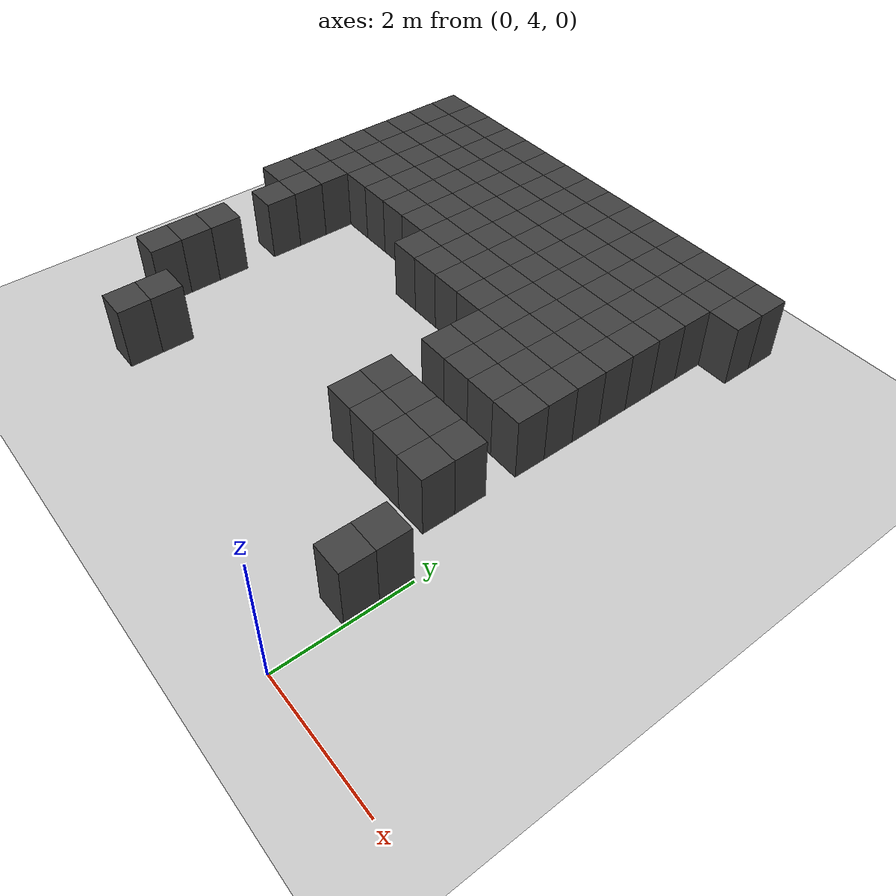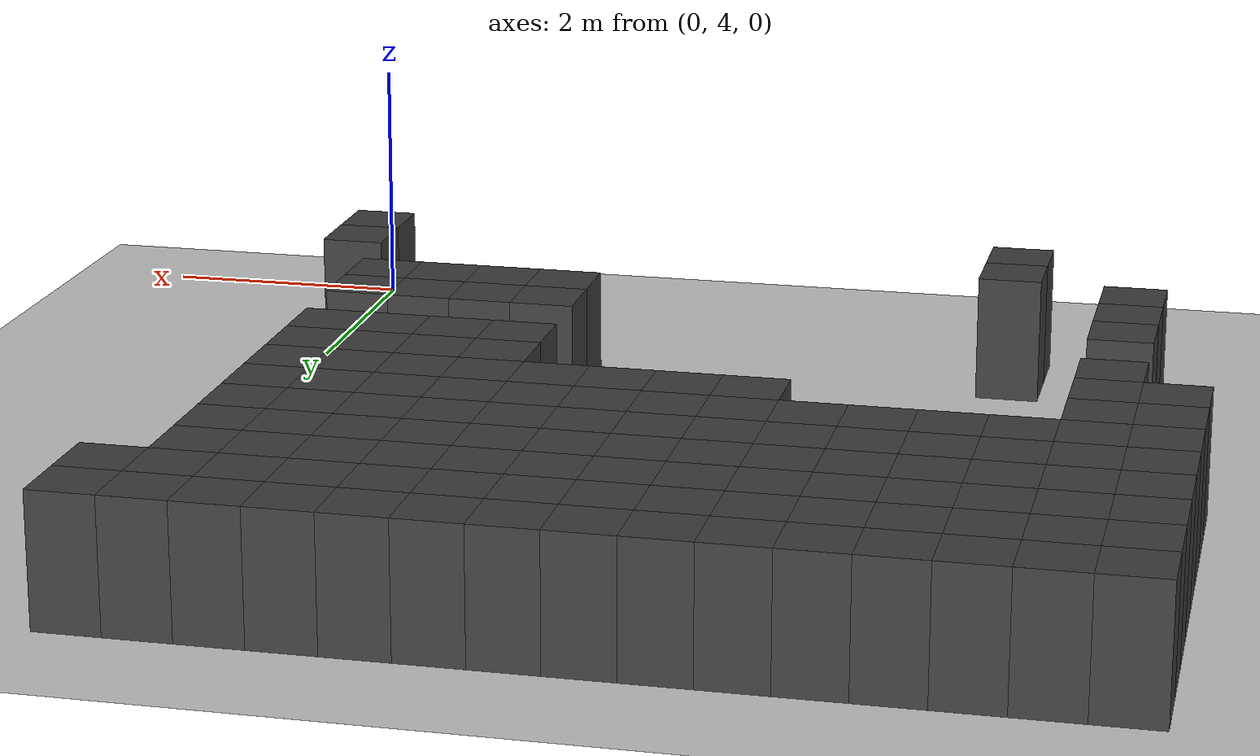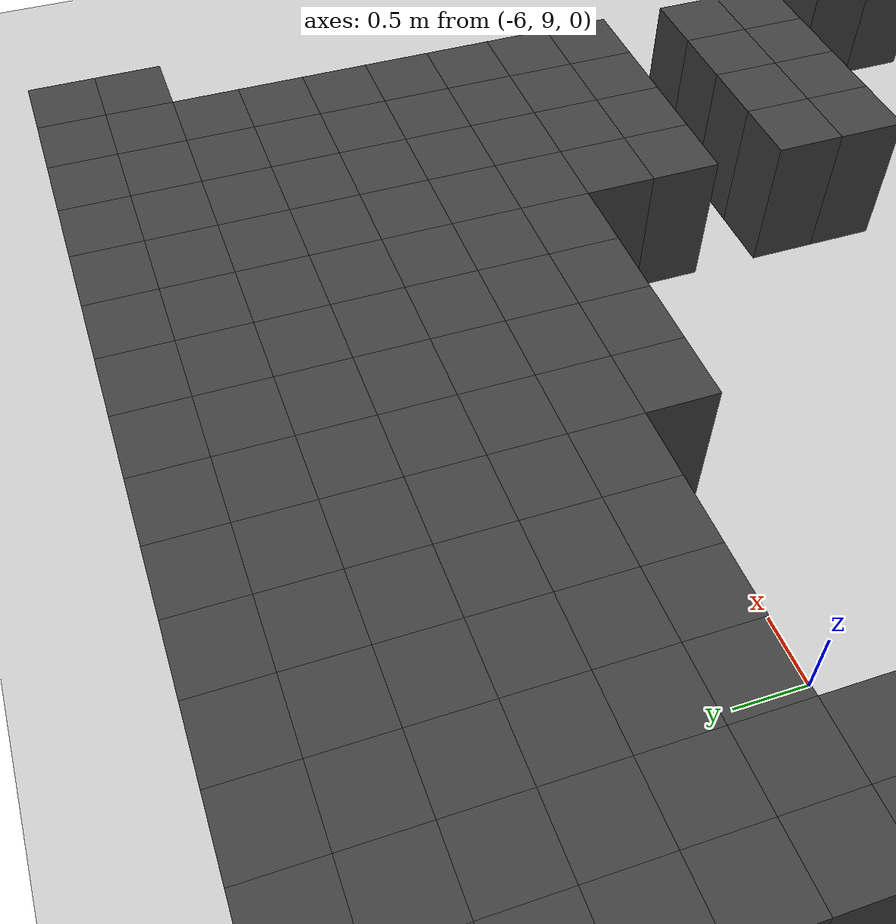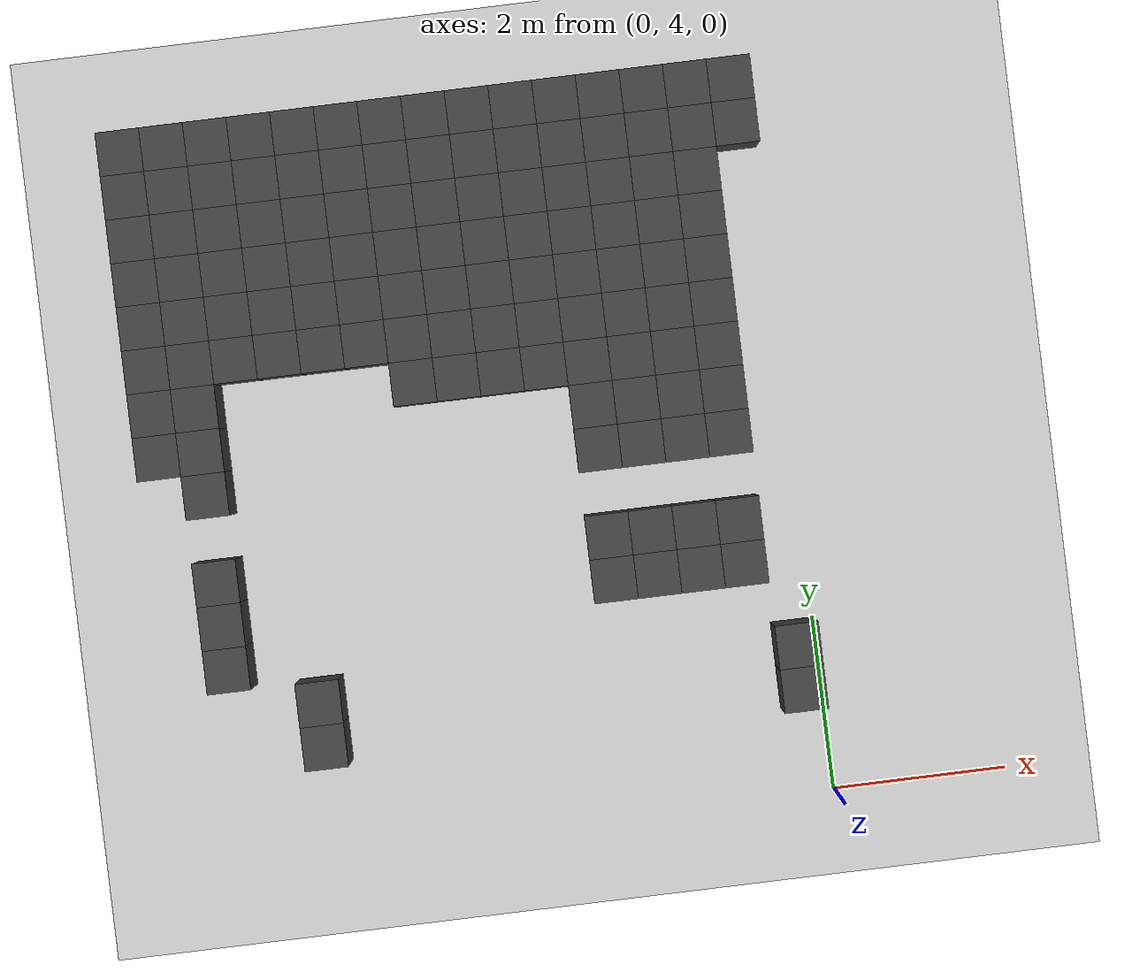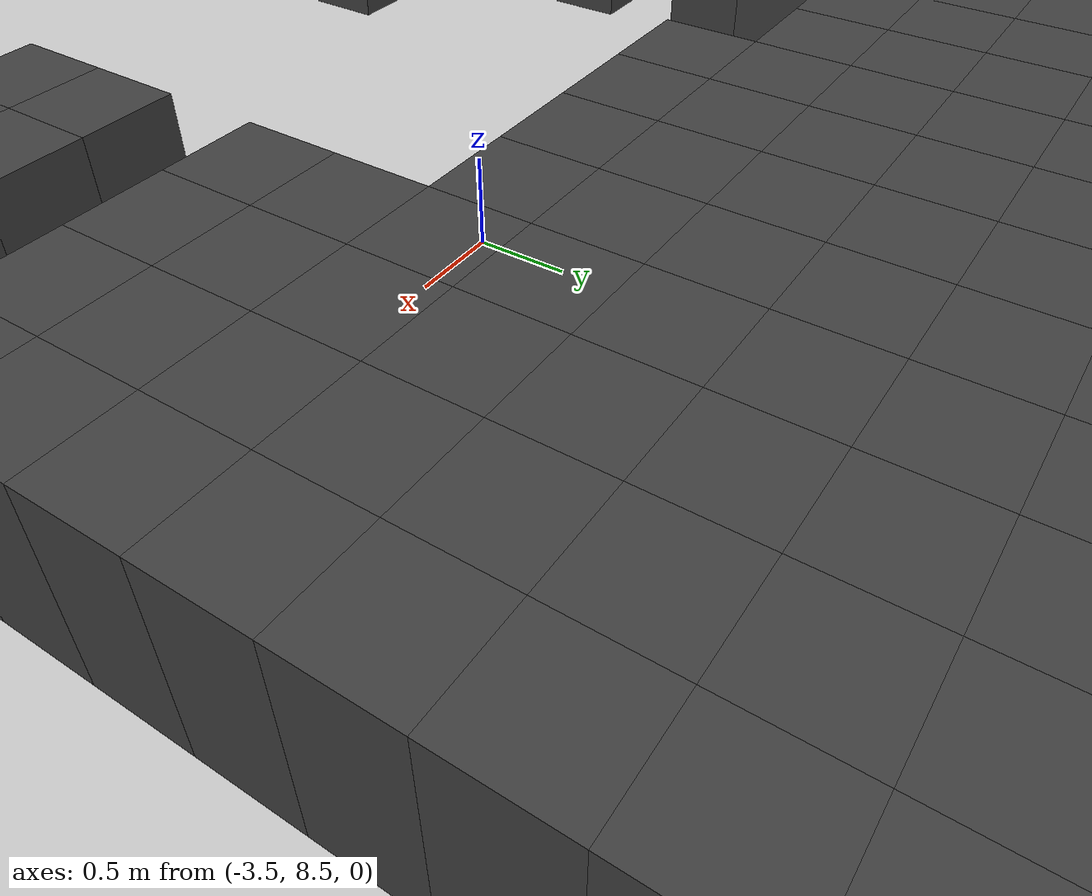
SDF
<sdf version="1.7">
 <world name="map_14888">
  <model name="ground_plane">
   <static>true</static>
   <link name="link">
    <collision name="collision">
     <geometry><plane><normal>0 0 1</normal><size>200 200</size></plane></geometry>
    </collision>
    <visual name="visual">
     <geometry><plane><normal>0 0 1</normal><size>200 200</size></plane></geometry>
     <material><ambient>0.8 0.8 0.8 1</ambient><diffuse>0.8 0.8 0.8 1</diffuse></material>
    </visual>
   </link>
  </model>
  <model name="maze_environment">
   <static>true</static>
   <link name="wall_10">
    <pose>-7.250 12.250 0.500 0 0 0</pose>
    <collision name="col"><geometry><box><size>0.5 0.5 1.0</size></box></geometry></collision>
    <visual name="vis">
     <geometry><box><size>0.5 0.5 1.0</size></box></geometry>
     <material><ambient>0.15 0.15 0.15 1</ambient><diffuse>0.25 0.25 0.25 1</diffuse></material>
    </visual>
   </link>
   <link name="wall_11">
    <pose>-6.750 12.250 0.500 0 0 0</pose>
    <collision name="col"><geometry><box><size>0.5 0.5 1.0</size></box></geometry></collision>
    <visual name="vis">
     <geometry><box><size>0.5 0.5 1.0</size></box></geometry>
     <material><ambient>0.15 0.15 0.15 1</ambient><diffuse>0.25 0.25 0.25 1</diffuse></material>
    </visual>
   </link>
   <link name="wall_12">
    <pose>-6.250 12.250 0.500 0 0 0</pose>
    <collision name="col"><geometry><box><size>0.5 0.5 1.0</size></box></geometry></collision>
    <visual name="vis">
     <geometry><box><size>0.5 0.5 1.0</size></box></geometry>
     <material><ambient>0.15 0.15 0.15 1</ambient><diffuse>0.25 0.25 0.25 1</diffuse></material>
    </visual>
   </link>
   <link name="wall_13">
    <pose>-5.750 12.250 0.500 0 0 0</pose>
    <collision name="col"><geometry><box><size>0.5 0.5 1.0</size></box></geometry></collision>
    <visual name="vis">
     <geometry><box><size>0.5 0.5 1.0</size></box></geometry>
     <material><ambient>0.15 0.15 0.15 1</ambient><diffuse>0.25 0.25 0.25 1</diffuse></material>
    </visual>
   </link>
   <link name="wall_14">
    <pose>-5.250 12.250 0.500 0 0 0</pose>
    <collision name="col"><geometry><box><size>0.5 0.5 1.0</size></box></geometry></collision>
    <visual name="vis">
     <geometry><box><size>0.5 0.5 1.0</size></box></geometry>
     <material><ambient>0.15 0.15 0.15 1</ambient><diffuse>0.25 0.25 0.25 1</diffuse></material>
    </visual>
   </link>
   <link name="wall_15">
    <pose>-4.750 12.250 0.500 0 0 0</pose>
    <collision name="col"><geometry><box><size>0.5 0.5 1.0</size></box></geometry></collision>
    <visual name="vis">
     <geometry><box><size>0.5 0.5 1.0</size></box></geometry>
     <material><ambient>0.15 0.15 0.15 1</ambient><diffuse>0.25 0.25 0.25 1</diffuse></material>
    </visual>
   </link>
   <link name="wall_16">
    <pose>-4.250 12.250 0.500 0 0 0</pose>
    <collision name="col"><geometry><box><size>0.5 0.5 1.0</size></box></geometry></collision>
    <visual name="vis">
     <geometry><box><size>0.5 0.5 1.0</size></box></geometry>
     <material><ambient>0.15 0.15 0.15 1</ambient><diffuse>0.25 0.25 0.25 1</diffuse></material>
    </visual>
   </link>
   <link name="wall_17">
    <pose>-3.750 12.250 0.500 0 0 0</pose>
    <collision name="col"><geometry><box><size>0.5 0.5 1.0</size></box></geometry></collision>
    <visual name="vis">
     <geometry><box><size>0.5 0.5 1.0</size></box></geometry>
     <material><ambient>0.15 0.15 0.15 1</ambient><diffuse>0.25 0.25 0.25 1</diffuse></material>
    </visual>
   </link>
   <link name="wall_18">
    <pose>-3.250 12.250 0.500 0 0 0</pose>
    <collision name="col"><geometry><box><size>0.5 0.5 1.0</size></box></geometry></collision>
    <visual name="vis">
     <geometry><box><size>0.5 0.5 1.0</size></box></geometry>
     <material><ambient>0.15 0.15 0.15 1</ambient><diffuse>0.25 0.25 0.25 1</diffuse></material>
    </visual>
   </link>
   <link name="wall_19">
    <pose>-2.750 12.250 0.500 0 0 0</pose>
    <collision name="col"><geometry><box><size>0.5 0.5 1.0</size></box></geometry></collision>
    <visual name="vis">
     <geometry><box><size>0.5 0.5 1.0</size></box></geometry>
     <material><ambient>0.15 0.15 0.15 1</ambient><diffuse>0.25 0.25 0.25 1</diffuse></material>
    </visual>
   </link>
   <link name="wall_20">
    <pose>-2.250 12.250 0.500 0 0 0</pose>
    <collision name="col"><geometry><box><size>0.5 0.5 1.0</size></box></geometry></collision>
    <visual name="vis">
     <geometry><box><size>0.5 0.5 1.0</size></box></geometry>
     <material><ambient>0.15 0.15 0.15 1</ambient><diffuse>0.25 0.25 0.25 1</diffuse></material>
    </visual>
   </link>
   <link name="wall_21">
    <pose>-1.750 12.250 0.500 0 0 0</pose>
    <collision name="col"><geometry><box><size>0.5 0.5 1.0</size></box></geometry></collision>
    <visual name="vis">
     <geometry><box><size>0.5 0.5 1.0</size></box></geometry>
     <material><ambient>0.15 0.15 0.15 1</ambient><diffuse>0.25 0.25 0.25 1</diffuse></material>
    </visual>
   </link>
   <link name="wall_22">
    <pose>-1.250 12.250 0.500 0 0 0</pose>
    <collision name="col"><geometry><box><size>0.5 0.5 1.0</size></box></geometry></collision>
    <visual name="vis">
     <geometry><box><size>0.5 0.5 1.0</size></box></geometry>
     <material><ambient>0.15 0.15 0.15 1</ambient><diffuse>0.25 0.25 0.25 1</diffuse></material>
    </visual>
   </link>
   <link name="wall_23">
    <pose>-0.750 12.250 0.500 0 0 0</pose>
    <collision name="col"><geometry><box><size>0.5 0.5 1.0</size></box></geometry></collision>
    <visual name="vis">
     <geometry><box><size>0.5 0.5 1.0</size></box></geometry>
     <material><ambient>0.15 0.15 0.15 1</ambient><diffuse>0.25 0.25 0.25 1</diffuse></material>
    </visual>
   </link>
   <link name="wall_24">
    <pose>-0.250 12.250 0.500 0 0 0</pose>
    <collision name="col"><geometry><box><size>0.5 0.5 1.0</size></box></geometry></collision>
    <visual name="vis">
     <geometry><box><size>0.5 0.5 1.0</size></box></geometry>
     <material><ambient>0.15 0.15 0.15 1</ambient><diffuse>0.25 0.25 0.25 1</diffuse></material>
    </visual>
   </link>
   <link name="wall_57">
    <pose>-7.250 11.750 0.500 0 0 0</pose>
    <collision name="col"><geometry><box><size>0.5 0.5 1.0</size></box></geometry></collision>
    <visual name="vis">
     <geometry><box><size>0.5 0.5 1.0</size></box></geometry>
     <material><ambient>0.15 0.15 0.15 1</ambient><diffuse>0.25 0.25 0.25 1</diffuse></material>
    </visual>
   </link>
   <link name="wall_58">
    <pose>-6.750 11.750 0.500 0 0 0</pose>
    <collision name="col"><geometry><box><size>0.5 0.5 1.0</size></box></geometry></collision>
    <visual name="vis">
     <geometry><box><size>0.5 0.5 1.0</size></box></geometry>
     <material><ambient>0.15 0.15 0.15 1</ambient><diffuse>0.25 0.25 0.25 1</diffuse></material>
    </visual>
   </link>
   <link name="wall_59">
    <pose>-6.250 11.750 0.500 0 0 0</pose>
    <collision name="col"><geometry><box><size>0.5 0.5 1.0</size></box></geometry></collision>
    <visual name="vis">
     <geometry><box><size>0.5 0.5 1.0</size></box></geometry>
     <material><ambient>0.15 0.15 0.15 1</ambient><diffuse>0.25 0.25 0.25 1</diffuse></material>
    </visual>
   </link>
   <link name="wall_60">
    <pose>-5.750 11.750 0.500 0 0 0</pose>
    <collision name="col"><geometry><box><size>0.5 0.5 1.0</size></box></geometry></collision>
    <visual name="vis">
     <geometry><box><size>0.5 0.5 1.0</size></box></geometry>
     <material><ambient>0.15 0.15 0.15 1</ambient><diffuse>0.25 0.25 0.25 1</diffuse></material>
    </visual>
   </link>
   <link name="wall_61">
    <pose>-5.250 11.750 0.500 0 0 0</pose>
    <collision name="col"><geometry><box><size>0.5 0.5 1.0</size></box></geometry></collision>
    <visual name="vis">
     <geometry><box><size>0.5 0.5 1.0</size></box></geometry>
     <material><ambient>0.15 0.15 0.15 1</ambient><diffuse>0.25 0.25 0.25 1</diffuse></material>
    </visual>
   </link>
   <link name="wall_62">
    <pose>-4.750 11.750 0.500 0 0 0</pose>
    <collision name="col"><geometry><box><size>0.5 0.5 1.0</size></box></geometry></collision>
    <visual name="vis">
     <geometry><box><size>0.5 0.5 1.0</size></box></geometry>
     <material><ambient>0.15 0.15 0.15 1</ambient><diffuse>0.25 0.25 0.25 1</diffuse></material>
    </visual>
   </link>
   <link name="wall_63">
    <pose>-4.250 11.750 0.500 0 0 0</pose>
    <collision name="col"><geometry><box><size>0.5 0.5 1.0</size></box></geometry></collision>
    <visual name="vis">
     <geometry><box><size>0.5 0.5 1.0</size></box></geometry>
     <material><ambient>0.15 0.15 0.15 1</ambient><diffuse>0.25 0.25 0.25 1</diffuse></material>
    </visual>
   </link>
   <link name="wall_64">
    <pose>-3.750 11.750 0.500 0 0 0</pose>
    <collision name="col"><geometry><box><size>0.5 0.5 1.0</size></box></geometry></collision>
    <visual name="vis">
     <geometry><box><size>0.5 0.5 1.0</size></box></geometry>
     <material><ambient>0.15 0.15 0.15 1</ambient><diffuse>0.25 0.25 0.25 1</diffuse></material>
    </visual>
   </link>
   <link name="wall_65">
    <pose>-3.250 11.750 0.500 0 0 0</pose>
    <collision name="col"><geometry><box><size>0.5 0.5 1.0</size></box></geometry></collision>
    <visual name="vis">
     <geometry><box><size>0.5 0.5 1.0</size></box></geometry>
     <material><ambient>0.15 0.15 0.15 1</ambient><diffuse>0.25 0.25 0.25 1</diffuse></material>
    </visual>
   </link>
   <link name="wall_66">
    <pose>-2.750 11.750 0.500 0 0 0</pose>
    <collision name="col"><geometry><box><size>0.5 0.5 1.0</size></box></geometry></collision>
    <visual name="vis">
     <geometry><box><size>0.5 0.5 1.0</size></box></geometry>
     <material><ambient>0.15 0.15 0.15 1</ambient><diffuse>0.25 0.25 0.25 1</diffuse></material>
    </visual>
   </link>
   <link name="wall_67">
    <pose>-2.250 11.750 0.500 0 0 0</pose>
    <collision name="col"><geometry><box><size>0.5 0.5 1.0</size></box></geometry></collision>
    <visual name="vis">
     <geometry><box><size>0.5 0.5 1.0</size></box></geometry>
     <material><ambient>0.15 0.15 0.15 1</ambient><diffuse>0.25 0.25 0.25 1</diffuse></material>
    </visual>
   </link>
   <link name="wall_68">
    <pose>-1.750 11.750 0.500 0 0 0</pose>
    <collision name="col"><geometry><box><size>0.5 0.5 1.0</size></box></geometry></collision>
    <visual name="vis">
     <geometry><box><size>0.5 0.5 1.0</size></box></geometry>
     <material><ambient>0.15 0.15 0.15 1</ambient><diffuse>0.25 0.25 0.25 1</diffuse></material>
    </visual>
   </link>
   <link name="wall_69">
    <pose>-1.250 11.750 0.500 0 0 0</pose>
    <collision name="col"><geometry><box><size>0.5 0.5 1.0</size></box></geometry></collision>
    <visual name="vis">
     <geometry><box><size>0.5 0.5 1.0</size></box></geometry>
     <material><ambient>0.15 0.15 0.15 1</ambient><diffuse>0.25 0.25 0.25 1</diffuse></material>
    </visual>
   </link>
   <link name="wall_70">
    <pose>-0.750 11.750 0.500 0 0 0</pose>
    <collision name="col"><geometry><box><size>0.5 0.5 1.0</size></box></geometry></collision>
    <visual name="vis">
     <geometry><box><size>0.5 0.5 1.0</size></box></geometry>
     <material><ambient>0.15 0.15 0.15 1</ambient><diffuse>0.25 0.25 0.25 1</diffuse></material>
    </visual>
   </link>
   <link name="wall_71">
    <pose>-0.250 11.750 0.500 0 0 0</pose>
    <collision name="col"><geometry><box><size>0.5 0.5 1.0</size></box></geometry></collision>
    <visual name="vis">
     <geometry><box><size>0.5 0.5 1.0</size></box></geometry>
     <material><ambient>0.15 0.15 0.15 1</ambient><diffuse>0.25 0.25 0.25 1</diffuse></material>
    </visual>
   </link>
   <link name="wall_104">
    <pose>-7.250 11.250 0.500 0 0 0</pose>
    <collision name="col"><geometry><box><size>0.5 0.5 1.0</size></box></geometry></collision>
    <visual name="vis">
     <geometry><box><size>0.5 0.5 1.0</size></box></geometry>
     <material><ambient>0.15 0.15 0.15 1</ambient><diffuse>0.25 0.25 0.25 1</diffuse></material>
    </visual>
   </link>
   <link name="wall_105">
    <pose>-6.750 11.250 0.500 0 0 0</pose>
    <collision name="col"><geometry><box><size>0.5 0.5 1.0</size></box></geometry></collision>
    <visual name="vis">
     <geometry><box><size>0.5 0.5 1.0</size></box></geometry>
     <material><ambient>0.15 0.15 0.15 1</ambient><diffuse>0.25 0.25 0.25 1</diffuse></material>
    </visual>
   </link>
   <link name="wall_106">
    <pose>-6.250 11.250 0.500 0 0 0</pose>
    <collision name="col"><geometry><box><size>0.5 0.5 1.0</size></box></geometry></collision>
    <visual name="vis">
     <geometry><box><size>0.5 0.5 1.0</size></box></geometry>
     <material><ambient>0.15 0.15 0.15 1</ambient><diffuse>0.25 0.25 0.25 1</diffuse></material>
    </visual>
   </link>
   <link name="wall_107">
    <pose>-5.750 11.250 0.500 0 0 0</pose>
    <collision name="col"><geometry><box><size>0.5 0.5 1.0</size></box></geometry></collision>
    <visual name="vis">
     <geometry><box><size>0.5 0.5 1.0</size></box></geometry>
     <material><ambient>0.15 0.15 0.15 1</ambient><diffuse>0.25 0.25 0.25 1</diffuse></material>
    </visual>
   </link>
   <link name="wall_108">
    <pose>-5.250 11.250 0.500 0 0 0</pose>
    <collision name="col"><geometry><box><size>0.5 0.5 1.0</size></box></geometry></collision>
    <visual name="vis">
     <geometry><box><size>0.5 0.5 1.0</size></box></geometry>
     <material><ambient>0.15 0.15 0.15 1</ambient><diffuse>0.25 0.25 0.25 1</diffuse></material>
    </visual>
   </link>
   <link name="wall_109">
    <pose>-4.750 11.250 0.500 0 0 0</pose>
    <collision name="col"><geometry><box><size>0.5 0.5 1.0</size></box></geometry></collision>
    <visual name="vis">
     <geometry><box><size>0.5 0.5 1.0</size></box></geometry>
     <material><ambient>0.15 0.15 0.15 1</ambient><diffuse>0.25 0.25 0.25 1</diffuse></material>
    </visual>
   </link>
   <link name="wall_110">
    <pose>-4.250 11.250 0.500 0 0 0</pose>
    <collision name="col"><geometry><box><size>0.5 0.5 1.0</size></box></geometry></collision>
    <visual name="vis">
     <geometry><box><size>0.5 0.5 1.0</size></box></geometry>
     <material><ambient>0.15 0.15 0.15 1</ambient><diffuse>0.25 0.25 0.25 1</diffuse></material>
    </visual>
   </link>
   <link name="wall_111">
    <pose>-3.750 11.250 0.500 0 0 0</pose>
    <collision name="col"><geometry><box><size>0.5 0.5 1.0</size></box></geometry></collision>
    <visual name="vis">
     <geometry><box><size>0.5 0.5 1.0</size></box></geometry>
     <material><ambient>0.15 0.15 0.15 1</ambient><diffuse>0.25 0.25 0.25 1</diffuse></material>
    </visual>
   </link>
   <link name="wall_112">
    <pose>-3.250 11.250 0.500 0 0 0</pose>
    <collision name="col"><geometry><box><size>0.5 0.5 1.0</size></box></geometry></collision>
    <visual name="vis">
     <geometry><box><size>0.5 0.5 1.0</size></box></geometry>
     <material><ambient>0.15 0.15 0.15 1</ambient><diffuse>0.25 0.25 0.25 1</diffuse></material>
    </visual>
   </link>
   <link name="wall_113">
    <pose>-2.750 11.250 0.500 0 0 0</pose>
    <collision name="col"><geometry><box><size>0.5 0.5 1.0</size></box></geometry></collision>
    <visual name="vis">
     <geometry><box><size>0.5 0.5 1.0</size></box></geometry>
     <material><ambient>0.15 0.15 0.15 1</ambient><diffuse>0.25 0.25 0.25 1</diffuse></material>
    </visual>
   </link>
   <link name="wall_114">
    <pose>-2.250 11.250 0.500 0 0 0</pose>
    <collision name="col"><geometry><box><size>0.5 0.5 1.0</size></box></geometry></collision>
    <visual name="vis">
     <geometry><box><size>0.5 0.5 1.0</size></box></geometry>
     <material><ambient>0.15 0.15 0.15 1</ambient><diffuse>0.25 0.25 0.25 1</diffuse></material>
    </visual>
   </link>
   <link name="wall_115">
    <pose>-1.750 11.250 0.500 0 0 0</pose>
    <collision name="col"><geometry><box><size>0.5 0.5 1.0</size></box></geometry></collision>
    <visual name="vis">
     <geometry><box><size>0.5 0.5 1.0</size></box></geometry>
     <material><ambient>0.15 0.15 0.15 1</ambient><diffuse>0.25 0.25 0.25 1</diffuse></material>
    </visual>
   </link>
   <link name="wall_116">
    <pose>-1.250 11.250 0.500 0 0 0</pose>
    <collision name="col"><geometry><box><size>0.5 0.5 1.0</size></box></geometry></collision>
    <visual name="vis">
     <geometry><box><size>0.5 0.5 1.0</size></box></geometry>
     <material><ambient>0.15 0.15 0.15 1</ambient><diffuse>0.25 0.25 0.25 1</diffuse></material>
    </visual>
   </link>
   <link name="wall_117">
    <pose>-0.750 11.250 0.500 0 0 0</pose>
    <collision name="col"><geometry><box><size>0.5 0.5 1.0</size></box></geometry></collision>
    <visual name="vis">
     <geometry><box><size>0.5 0.5 1.0</size></box></geometry>
     <material><ambient>0.15 0.15 0.15 1</ambient><diffuse>0.25 0.25 0.25 1</diffuse></material>
    </visual>
   </link>
   <link name="wall_145">
    <pose>-7.250 10.750 0.500 0 0 0</pose>
    <collision name="col"><geometry><box><size>0.5 0.5 1.0</size></box></geometry></collision>
    <visual name="vis">
     <geometry><box><size>0.5 0.5 1.0</size></box></geometry>
     <material><ambient>0.15 0.15 0.15 1</ambient><diffuse>0.25 0.25 0.25 1</diffuse></material>
    </visual>
   </link>
   <link name="wall_146">
    <pose>-6.750 10.750 0.500 0 0 0</pose>
    <collision name="col"><geometry><box><size>0.5 0.5 1.0</size></box></geometry></collision>
    <visual name="vis">
     <geometry><box><size>0.5 0.5 1.0</size></box></geometry>
     <material><ambient>0.15 0.15 0.15 1</ambient><diffuse>0.25 0.25 0.25 1</diffuse></material>
    </visual>
   </link>
   <link name="wall_147">
    <pose>-6.250 10.750 0.500 0 0 0</pose>
    <collision name="col"><geometry><box><size>0.5 0.5 1.0</size></box></geometry></collision>
    <visual name="vis">
     <geometry><box><size>0.5 0.5 1.0</size></box></geometry>
     <material><ambient>0.15 0.15 0.15 1</ambient><diffuse>0.25 0.25 0.25 1</diffuse></material>
    </visual>
   </link>
   <link name="wall_148">
    <pose>-5.750 10.750 0.500 0 0 0</pose>
    <collision name="col"><geometry><box><size>0.5 0.5 1.0</size></box></geometry></collision>
    <visual name="vis">
     <geometry><box><size>0.5 0.5 1.0</size></box></geometry>
     <material><ambient>0.15 0.15 0.15 1</ambient><diffuse>0.25 0.25 0.25 1</diffuse></material>
    </visual>
   </link>
   <link name="wall_149">
    <pose>-5.250 10.750 0.500 0 0 0</pose>
    <collision name="col"><geometry><box><size>0.5 0.5 1.0</size></box></geometry></collision>
    <visual name="vis">
     <geometry><box><size>0.5 0.5 1.0</size></box></geometry>
     <material><ambient>0.15 0.15 0.15 1</ambient><diffuse>0.25 0.25 0.25 1</diffuse></material>
    </visual>
   </link>
   <link name="wall_150">
    <pose>-4.750 10.750 0.500 0 0 0</pose>
    <collision name="col"><geometry><box><size>0.5 0.5 1.0</size></box></geometry></collision>
    <visual name="vis">
     <geometry><box><size>0.5 0.5 1.0</size></box></geometry>
     <material><ambient>0.15 0.15 0.15 1</ambient><diffuse>0.25 0.25 0.25 1</diffuse></material>
    </visual>
   </link>
   <link name="wall_151">
    <pose>-4.250 10.750 0.500 0 0 0</pose>
    <collision name="col"><geometry><box><size>0.5 0.5 1.0</size></box></geometry></collision>
    <visual name="vis">
     <geometry><box><size>0.5 0.5 1.0</size></box></geometry>
     <material><ambient>0.15 0.15 0.15 1</ambient><diffuse>0.25 0.25 0.25 1</diffuse></material>
    </visual>
   </link>
   <link name="wall_152">
    <pose>-3.750 10.750 0.500 0 0 0</pose>
    <collision name="col"><geometry><box><size>0.5 0.5 1.0</size></box></geometry></collision>
    <visual name="vis">
     <geometry><box><size>0.5 0.5 1.0</size></box></geometry>
     <material><ambient>0.15 0.15 0.15 1</ambient><diffuse>0.25 0.25 0.25 1</diffuse></material>
    </visual>
   </link>
   <link name="wall_153">
    <pose>-3.250 10.750 0.500 0 0 0</pose>
    <collision name="col"><geometry><box><size>0.5 0.5 1.0</size></box></geometry></collision>
    <visual name="vis">
     <geometry><box><size>0.5 0.5 1.0</size></box></geometry>
     <material><ambient>0.15 0.15 0.15 1</ambient><diffuse>0.25 0.25 0.25 1</diffuse></material>
    </visual>
   </link>
   <link name="wall_154">
    <pose>-2.750 10.750 0.500 0 0 0</pose>
    <collision name="col"><geometry><box><size>0.5 0.5 1.0</size></box></geometry></collision>
    <visual name="vis">
     <geometry><box><size>0.5 0.5 1.0</size></box></geometry>
     <material><ambient>0.15 0.15 0.15 1</ambient><diffuse>0.25 0.25 0.25 1</diffuse></material>
    </visual>
   </link>
   <link name="wall_155">
    <pose>-2.250 10.750 0.500 0 0 0</pose>
    <collision name="col"><geometry><box><size>0.5 0.5 1.0</size></box></geometry></collision>
    <visual name="vis">
     <geometry><box><size>0.5 0.5 1.0</size></box></geometry>
     <material><ambient>0.15 0.15 0.15 1</ambient><diffuse>0.25 0.25 0.25 1</diffuse></material>
    </visual>
   </link>
   <link name="wall_156">
    <pose>-1.750 10.750 0.500 0 0 0</pose>
    <collision name="col"><geometry><box><size>0.5 0.5 1.0</size></box></geometry></collision>
    <visual name="vis">
     <geometry><box><size>0.5 0.5 1.0</size></box></geometry>
     <material><ambient>0.15 0.15 0.15 1</ambient><diffuse>0.25 0.25 0.25 1</diffuse></material>
    </visual>
   </link>
   <link name="wall_157">
    <pose>-1.250 10.750 0.500 0 0 0</pose>
    <collision name="col"><geometry><box><size>0.5 0.5 1.0</size></box></geometry></collision>
    <visual name="vis">
     <geometry><box><size>0.5 0.5 1.0</size></box></geometry>
     <material><ambient>0.15 0.15 0.15 1</ambient><diffuse>0.25 0.25 0.25 1</diffuse></material>
    </visual>
   </link>
   <link name="wall_158">
    <pose>-0.750 10.750 0.500 0 0 0</pose>
    <collision name="col"><geometry><box><size>0.5 0.5 1.0</size></box></geometry></collision>
    <visual name="vis">
     <geometry><box><size>0.5 0.5 1.0</size></box></geometry>
     <material><ambient>0.15 0.15 0.15 1</ambient><diffuse>0.25 0.25 0.25 1</diffuse></material>
    </visual>
   </link>
   <link name="wall_188">
    <pose>-7.250 10.250 0.500 0 0 0</pose>
    <collision name="col"><geometry><box><size>0.5 0.5 1.0</size></box></geometry></collision>
    <visual name="vis">
     <geometry><box><size>0.5 0.5 1.0</size></box></geometry>
     <material><ambient>0.15 0.15 0.15 1</ambient><diffuse>0.25 0.25 0.25 1</diffuse></material>
    </visual>
   </link>
   <link name="wall_189">
    <pose>-6.750 10.250 0.500 0 0 0</pose>
    <collision name="col"><geometry><box><size>0.5 0.5 1.0</size></box></geometry></collision>
    <visual name="vis">
     <geometry><box><size>0.5 0.5 1.0</size></box></geometry>
     <material><ambient>0.15 0.15 0.15 1</ambient><diffuse>0.25 0.25 0.25 1</diffuse></material>
    </visual>
   </link>
   <link name="wall_190">
    <pose>-6.250 10.250 0.500 0 0 0</pose>
    <collision name="col"><geometry><box><size>0.5 0.5 1.0</size></box></geometry></collision>
    <visual name="vis">
     <geometry><box><size>0.5 0.5 1.0</size></box></geometry>
     <material><ambient>0.15 0.15 0.15 1</ambient><diffuse>0.25 0.25 0.25 1</diffuse></material>
    </visual>
   </link>
   <link name="wall_191">
    <pose>-5.750 10.250 0.500 0 0 0</pose>
    <collision name="col"><geometry><box><size>0.5 0.5 1.0</size></box></geometry></collision>
    <visual name="vis">
     <geometry><box><size>0.5 0.5 1.0</size></box></geometry>
     <material><ambient>0.15 0.15 0.15 1</ambient><diffuse>0.25 0.25 0.25 1</diffuse></material>
    </visual>
   </link>
   <link name="wall_192">
    <pose>-5.250 10.250 0.500 0 0 0</pose>
    <collision name="col"><geometry><box><size>0.5 0.5 1.0</size></box></geometry></collision>
    <visual name="vis">
     <geometry><box><size>0.5 0.5 1.0</size></box></geometry>
     <material><ambient>0.15 0.15 0.15 1</ambient><diffuse>0.25 0.25 0.25 1</diffuse></material>
    </visual>
   </link>
   <link name="wall_193">
    <pose>-4.750 10.250 0.500 0 0 0</pose>
    <collision name="col"><geometry><box><size>0.5 0.5 1.0</size></box></geometry></collision>
    <visual name="vis">
     <geometry><box><size>0.5 0.5 1.0</size></box></geometry>
     <material><ambient>0.15 0.15 0.15 1</ambient><diffuse>0.25 0.25 0.25 1</diffuse></material>
    </visual>
   </link>
   <link name="wall_194">
    <pose>-4.250 10.250 0.500 0 0 0</pose>
    <collision name="col"><geometry><box><size>0.5 0.5 1.0</size></box></geometry></collision>
    <visual name="vis">
     <geometry><box><size>0.5 0.5 1.0</size></box></geometry>
     <material><ambient>0.15 0.15 0.15 1</ambient><diffuse>0.25 0.25 0.25 1</diffuse></material>
    </visual>
   </link>
   <link name="wall_195">
    <pose>-3.750 10.250 0.500 0 0 0</pose>
    <collision name="col"><geometry><box><size>0.5 0.5 1.0</size></box></geometry></collision>
    <visual name="vis">
     <geometry><box><size>0.5 0.5 1.0</size></box></geometry>
     <material><ambient>0.15 0.15 0.15 1</ambient><diffuse>0.25 0.25 0.25 1</diffuse></material>
    </visual>
   </link>
   <link name="wall_196">
    <pose>-3.250 10.250 0.500 0 0 0</pose>
    <collision name="col"><geometry><box><size>0.5 0.5 1.0</size></box></geometry></collision>
    <visual name="vis">
     <geometry><box><size>0.5 0.5 1.0</size></box></geometry>
     <material><ambient>0.15 0.15 0.15 1</ambient><diffuse>0.25 0.25 0.25 1</diffuse></material>
    </visual>
   </link>
   <link name="wall_197">
    <pose>-2.750 10.250 0.500 0 0 0</pose>
    <collision name="col"><geometry><box><size>0.5 0.5 1.0</size></box></geometry></collision>
    <visual name="vis">
     <geometry><box><size>0.5 0.5 1.0</size></box></geometry>
     <material><ambient>0.15 0.15 0.15 1</ambient><diffuse>0.25 0.25 0.25 1</diffuse></material>
    </visual>
   </link>
   <link name="wall_198">
    <pose>-2.250 10.250 0.500 0 0 0</pose>
    <collision name="col"><geometry><box><size>0.5 0.5 1.0</size></box></geometry></collision>
    <visual name="vis">
     <geometry><box><size>0.5 0.5 1.0</size></box></geometry>
     <material><ambient>0.15 0.15 0.15 1</ambient><diffuse>0.25 0.25 0.25 1</diffuse></material>
    </visual>
   </link>
   <link name="wall_199">
    <pose>-1.750 10.250 0.500 0 0 0</pose>
    <collision name="col"><geometry><box><size>0.5 0.5 1.0</size></box></geometry></collision>
    <visual name="vis">
     <geometry><box><size>0.5 0.5 1.0</size></box></geometry>
     <material><ambient>0.15 0.15 0.15 1</ambient><diffuse>0.25 0.25 0.25 1</diffuse></material>
    </visual>
   </link>
   <link name="wall_200">
    <pose>-1.250 10.250 0.500 0 0 0</pose>
    <collision name="col"><geometry><box><size>0.5 0.5 1.0</size></box></geometry></collision>
    <visual name="vis">
     <geometry><box><size>0.5 0.5 1.0</size></box></geometry>
     <material><ambient>0.15 0.15 0.15 1</ambient><diffuse>0.25 0.25 0.25 1</diffuse></material>
    </visual>
   </link>
   <link name="wall_201">
    <pose>-0.750 10.250 0.500 0 0 0</pose>
    <collision name="col"><geometry><box><size>0.5 0.5 1.0</size></box></geometry></collision>
    <visual name="vis">
     <geometry><box><size>0.5 0.5 1.0</size></box></geometry>
     <material><ambient>0.15 0.15 0.15 1</ambient><diffuse>0.25 0.25 0.25 1</diffuse></material>
    </visual>
   </link>
   <link name="wall_231">
    <pose>-7.250 9.750 0.500 0 0 0</pose>
    <collision name="col"><geometry><box><size>0.5 0.5 1.0</size></box></geometry></collision>
    <visual name="vis">
     <geometry><box><size>0.5 0.5 1.0</size></box></geometry>
     <material><ambient>0.15 0.15 0.15 1</ambient><diffuse>0.25 0.25 0.25 1</diffuse></material>
    </visual>
   </link>
   <link name="wall_232">
    <pose>-6.750 9.750 0.500 0 0 0</pose>
    <collision name="col"><geometry><box><size>0.5 0.5 1.0</size></box></geometry></collision>
    <visual name="vis">
     <geometry><box><size>0.5 0.5 1.0</size></box></geometry>
     <material><ambient>0.15 0.15 0.15 1</ambient><diffuse>0.25 0.25 0.25 1</diffuse></material>
    </visual>
   </link>
   <link name="wall_233">
    <pose>-6.250 9.750 0.500 0 0 0</pose>
    <collision name="col"><geometry><box><size>0.5 0.5 1.0</size></box></geometry></collision>
    <visual name="vis">
     <geometry><box><size>0.5 0.5 1.0</size></box></geometry>
     <material><ambient>0.15 0.15 0.15 1</ambient><diffuse>0.25 0.25 0.25 1</diffuse></material>
    </visual>
   </link>
   <link name="wall_234">
    <pose>-5.750 9.750 0.500 0 0 0</pose>
    <collision name="col"><geometry><box><size>0.5 0.5 1.0</size></box></geometry></collision>
    <visual name="vis">
     <geometry><box><size>0.5 0.5 1.0</size></box></geometry>
     <material><ambient>0.15 0.15 0.15 1</ambient><diffuse>0.25 0.25 0.25 1</diffuse></material>
    </visual>
   </link>
   <link name="wall_235">
    <pose>-5.250 9.750 0.500 0 0 0</pose>
    <collision name="col"><geometry><box><size>0.5 0.5 1.0</size></box></geometry></collision>
    <visual name="vis">
     <geometry><box><size>0.5 0.5 1.0</size></box></geometry>
     <material><ambient>0.15 0.15 0.15 1</ambient><diffuse>0.25 0.25 0.25 1</diffuse></material>
    </visual>
   </link>
   <link name="wall_236">
    <pose>-4.750 9.750 0.500 0 0 0</pose>
    <collision name="col"><geometry><box><size>0.5 0.5 1.0</size></box></geometry></collision>
    <visual name="vis">
     <geometry><box><size>0.5 0.5 1.0</size></box></geometry>
     <material><ambient>0.15 0.15 0.15 1</ambient><diffuse>0.25 0.25 0.25 1</diffuse></material>
    </visual>
   </link>
   <link name="wall_237">
    <pose>-4.250 9.750 0.500 0 0 0</pose>
    <collision name="col"><geometry><box><size>0.5 0.5 1.0</size></box></geometry></collision>
    <visual name="vis">
     <geometry><box><size>0.5 0.5 1.0</size></box></geometry>
     <material><ambient>0.15 0.15 0.15 1</ambient><diffuse>0.25 0.25 0.25 1</diffuse></material>
    </visual>
   </link>
   <link name="wall_238">
    <pose>-3.750 9.750 0.500 0 0 0</pose>
    <collision name="col"><geometry><box><size>0.5 0.5 1.0</size></box></geometry></collision>
    <visual name="vis">
     <geometry><box><size>0.5 0.5 1.0</size></box></geometry>
     <material><ambient>0.15 0.15 0.15 1</ambient><diffuse>0.25 0.25 0.25 1</diffuse></material>
    </visual>
   </link>
   <link name="wall_239">
    <pose>-3.250 9.750 0.500 0 0 0</pose>
    <collision name="col"><geometry><box><size>0.5 0.5 1.0</size></box></geometry></collision>
    <visual name="vis">
     <geometry><box><size>0.5 0.5 1.0</size></box></geometry>
     <material><ambient>0.15 0.15 0.15 1</ambient><diffuse>0.25 0.25 0.25 1</diffuse></material>
    </visual>
   </link>
   <link name="wall_240">
    <pose>-2.750 9.750 0.500 0 0 0</pose>
    <collision name="col"><geometry><box><size>0.5 0.5 1.0</size></box></geometry></collision>
    <visual name="vis">
     <geometry><box><size>0.5 0.5 1.0</size></box></geometry>
     <material><ambient>0.15 0.15 0.15 1</ambient><diffuse>0.25 0.25 0.25 1</diffuse></material>
    </visual>
   </link>
   <link name="wall_241">
    <pose>-2.250 9.750 0.500 0 0 0</pose>
    <collision name="col"><geometry><box><size>0.5 0.5 1.0</size></box></geometry></collision>
    <visual name="vis">
     <geometry><box><size>0.5 0.5 1.0</size></box></geometry>
     <material><ambient>0.15 0.15 0.15 1</ambient><diffuse>0.25 0.25 0.25 1</diffuse></material>
    </visual>
   </link>
   <link name="wall_242">
    <pose>-1.750 9.750 0.500 0 0 0</pose>
    <collision name="col"><geometry><box><size>0.5 0.5 1.0</size></box></geometry></collision>
    <visual name="vis">
     <geometry><box><size>0.5 0.5 1.0</size></box></geometry>
     <material><ambient>0.15 0.15 0.15 1</ambient><diffuse>0.25 0.25 0.25 1</diffuse></material>
    </visual>
   </link>
   <link name="wall_243">
    <pose>-1.250 9.750 0.500 0 0 0</pose>
    <collision name="col"><geometry><box><size>0.5 0.5 1.0</size></box></geometry></collision>
    <visual name="vis">
     <geometry><box><size>0.5 0.5 1.0</size></box></geometry>
     <material><ambient>0.15 0.15 0.15 1</ambient><diffuse>0.25 0.25 0.25 1</diffuse></material>
    </visual>
   </link>
   <link name="wall_244">
    <pose>-0.750 9.750 0.500 0 0 0</pose>
    <collision name="col"><geometry><box><size>0.5 0.5 1.0</size></box></geometry></collision>
    <visual name="vis">
     <geometry><box><size>0.5 0.5 1.0</size></box></geometry>
     <material><ambient>0.15 0.15 0.15 1</ambient><diffuse>0.25 0.25 0.25 1</diffuse></material>
    </visual>
   </link>
   <link name="wall_273">
    <pose>-7.250 9.250 0.500 0 0 0</pose>
    <collision name="col"><geometry><box><size>0.5 0.5 1.0</size></box></geometry></collision>
    <visual name="vis">
     <geometry><box><size>0.5 0.5 1.0</size></box></geometry>
     <material><ambient>0.15 0.15 0.15 1</ambient><diffuse>0.25 0.25 0.25 1</diffuse></material>
    </visual>
   </link>
   <link name="wall_274">
    <pose>-6.750 9.250 0.500 0 0 0</pose>
    <collision name="col"><geometry><box><size>0.5 0.5 1.0</size></box></geometry></collision>
    <visual name="vis">
     <geometry><box><size>0.5 0.5 1.0</size></box></geometry>
     <material><ambient>0.15 0.15 0.15 1</ambient><diffuse>0.25 0.25 0.25 1</diffuse></material>
    </visual>
   </link>
   <link name="wall_275">
    <pose>-4.250 9.250 0.500 0 0 0</pose>
    <collision name="col"><geometry><box><size>0.5 0.5 1.0</size></box></geometry></collision>
    <visual name="vis">
     <geometry><box><size>0.5 0.5 1.0</size></box></geometry>
     <material><ambient>0.15 0.15 0.15 1</ambient><diffuse>0.25 0.25 0.25 1</diffuse></material>
    </visual>
   </link>
   <link name="wall_276">
    <pose>-3.750 9.250 0.500 0 0 0</pose>
    <collision name="col"><geometry><box><size>0.5 0.5 1.0</size></box></geometry></collision>
    <visual name="vis">
     <geometry><box><size>0.5 0.5 1.0</size></box></geometry>
     <material><ambient>0.15 0.15 0.15 1</ambient><diffuse>0.25 0.25 0.25 1</diffuse></material>
    </visual>
   </link>
   <link name="wall_277">
    <pose>-3.250 9.250 0.500 0 0 0</pose>
    <collision name="col"><geometry><box><size>0.5 0.5 1.0</size></box></geometry></collision>
    <visual name="vis">
     <geometry><box><size>0.5 0.5 1.0</size></box></geometry>
     <material><ambient>0.15 0.15 0.15 1</ambient><diffuse>0.25 0.25 0.25 1</diffuse></material>
    </visual>
   </link>
   <link name="wall_278">
    <pose>-2.750 9.250 0.500 0 0 0</pose>
    <collision name="col"><geometry><box><size>0.5 0.5 1.0</size></box></geometry></collision>
    <visual name="vis">
     <geometry><box><size>0.5 0.5 1.0</size></box></geometry>
     <material><ambient>0.15 0.15 0.15 1</ambient><diffuse>0.25 0.25 0.25 1</diffuse></material>
    </visual>
   </link>
   <link name="wall_279">
    <pose>-2.250 9.250 0.500 0 0 0</pose>
    <collision name="col"><geometry><box><size>0.5 0.5 1.0</size></box></geometry></collision>
    <visual name="vis">
     <geometry><box><size>0.5 0.5 1.0</size></box></geometry>
     <material><ambient>0.15 0.15 0.15 1</ambient><diffuse>0.25 0.25 0.25 1</diffuse></material>
    </visual>
   </link>
   <link name="wall_280">
    <pose>-1.750 9.250 0.500 0 0 0</pose>
    <collision name="col"><geometry><box><size>0.5 0.5 1.0</size></box></geometry></collision>
    <visual name="vis">
     <geometry><box><size>0.5 0.5 1.0</size></box></geometry>
     <material><ambient>0.15 0.15 0.15 1</ambient><diffuse>0.25 0.25 0.25 1</diffuse></material>
    </visual>
   </link>
   <link name="wall_281">
    <pose>-1.250 9.250 0.500 0 0 0</pose>
    <collision name="col"><geometry><box><size>0.5 0.5 1.0</size></box></geometry></collision>
    <visual name="vis">
     <geometry><box><size>0.5 0.5 1.0</size></box></geometry>
     <material><ambient>0.15 0.15 0.15 1</ambient><diffuse>0.25 0.25 0.25 1</diffuse></material>
    </visual>
   </link>
   <link name="wall_282">
    <pose>-0.750 9.250 0.500 0 0 0</pose>
    <collision name="col"><geometry><box><size>0.5 0.5 1.0</size></box></geometry></collision>
    <visual name="vis">
     <geometry><box><size>0.5 0.5 1.0</size></box></geometry>
     <material><ambient>0.15 0.15 0.15 1</ambient><diffuse>0.25 0.25 0.25 1</diffuse></material>
    </visual>
   </link>
   <link name="wall_311">
    <pose>-7.250 8.750 0.500 0 0 0</pose>
    <collision name="col"><geometry><box><size>0.5 0.5 1.0</size></box></geometry></collision>
    <visual name="vis">
     <geometry><box><size>0.5 0.5 1.0</size></box></geometry>
     <material><ambient>0.15 0.15 0.15 1</ambient><diffuse>0.25 0.25 0.25 1</diffuse></material>
    </visual>
   </link>
   <link name="wall_312">
    <pose>-6.750 8.750 0.500 0 0 0</pose>
    <collision name="col"><geometry><box><size>0.5 0.5 1.0</size></box></geometry></collision>
    <visual name="vis">
     <geometry><box><size>0.5 0.5 1.0</size></box></geometry>
     <material><ambient>0.15 0.15 0.15 1</ambient><diffuse>0.25 0.25 0.25 1</diffuse></material>
    </visual>
   </link>
   <link name="wall_313">
    <pose>-2.250 8.750 0.500 0 0 0</pose>
    <collision name="col"><geometry><box><size>0.5 0.5 1.0</size></box></geometry></collision>
    <visual name="vis">
     <geometry><box><size>0.5 0.5 1.0</size></box></geometry>
     <material><ambient>0.15 0.15 0.15 1</ambient><diffuse>0.25 0.25 0.25 1</diffuse></material>
    </visual>
   </link>
   <link name="wall_314">
    <pose>-1.750 8.750 0.500 0 0 0</pose>
    <collision name="col"><geometry><box><size>0.5 0.5 1.0</size></box></geometry></collision>
    <visual name="vis">
     <geometry><box><size>0.5 0.5 1.0</size></box></geometry>
     <material><ambient>0.15 0.15 0.15 1</ambient><diffuse>0.25 0.25 0.25 1</diffuse></material>
    </visual>
   </link>
   <link name="wall_315">
    <pose>-1.250 8.750 0.500 0 0 0</pose>
    <collision name="col"><geometry><box><size>0.5 0.5 1.0</size></box></geometry></collision>
    <visual name="vis">
     <geometry><box><size>0.5 0.5 1.0</size></box></geometry>
     <material><ambient>0.15 0.15 0.15 1</ambient><diffuse>0.25 0.25 0.25 1</diffuse></material>
    </visual>
   </link>
   <link name="wall_316">
    <pose>-0.750 8.750 0.500 0 0 0</pose>
    <collision name="col"><geometry><box><size>0.5 0.5 1.0</size></box></geometry></collision>
    <visual name="vis">
     <geometry><box><size>0.5 0.5 1.0</size></box></geometry>
     <material><ambient>0.15 0.15 0.15 1</ambient><diffuse>0.25 0.25 0.25 1</diffuse></material>
    </visual>
   </link>
   <link name="wall_346">
    <pose>-6.750 8.250 0.500 0 0 0</pose>
    <collision name="col"><geometry><box><size>0.5 0.5 1.0</size></box></geometry></collision>
    <visual name="vis">
     <geometry><box><size>0.5 0.5 1.0</size></box></geometry>
     <material><ambient>0.15 0.15 0.15 1</ambient><diffuse>0.25 0.25 0.25 1</diffuse></material>
    </visual>
   </link>
   <link name="wall_347">
    <pose>-2.250 8.250 0.500 0 0 0</pose>
    <collision name="col"><geometry><box><size>0.5 0.5 1.0</size></box></geometry></collision>
    <visual name="vis">
     <geometry><box><size>0.5 0.5 1.0</size></box></geometry>
     <material><ambient>0.15 0.15 0.15 1</ambient><diffuse>0.25 0.25 0.25 1</diffuse></material>
    </visual>
   </link>
   <link name="wall_348">
    <pose>-1.750 8.250 0.500 0 0 0</pose>
    <collision name="col"><geometry><box><size>0.5 0.5 1.0</size></box></geometry></collision>
    <visual name="vis">
     <geometry><box><size>0.5 0.5 1.0</size></box></geometry>
     <material><ambient>0.15 0.15 0.15 1</ambient><diffuse>0.25 0.25 0.25 1</diffuse></material>
    </visual>
   </link>
   <link name="wall_349">
    <pose>-1.250 8.250 0.500 0 0 0</pose>
    <collision name="col"><geometry><box><size>0.5 0.5 1.0</size></box></geometry></collision>
    <visual name="vis">
     <geometry><box><size>0.5 0.5 1.0</size></box></geometry>
     <material><ambient>0.15 0.15 0.15 1</ambient><diffuse>0.25 0.25 0.25 1</diffuse></material>
    </visual>
   </link>
   <link name="wall_350">
    <pose>-0.750 8.250 0.500 0 0 0</pose>
    <collision name="col"><geometry><box><size>0.5 0.5 1.0</size></box></geometry></collision>
    <visual name="vis">
     <geometry><box><size>0.5 0.5 1.0</size></box></geometry>
     <material><ambient>0.15 0.15 0.15 1</ambient><diffuse>0.25 0.25 0.25 1</diffuse></material>
    </visual>
   </link>
   <link name="wall_402">
    <pose>-6.750 7.250 0.500 0 0 0</pose>
    <collision name="col"><geometry><box><size>0.5 0.5 1.0</size></box></geometry></collision>
    <visual name="vis">
     <geometry><box><size>0.5 0.5 1.0</size></box></geometry>
     <material><ambient>0.15 0.15 0.15 1</ambient><diffuse>0.25 0.25 0.25 1</diffuse></material>
    </visual>
   </link>
   <link name="wall_403">
    <pose>-2.250 7.250 0.500 0 0 0</pose>
    <collision name="col"><geometry><box><size>0.5 0.5 1.0</size></box></geometry></collision>
    <visual name="vis">
     <geometry><box><size>0.5 0.5 1.0</size></box></geometry>
     <material><ambient>0.15 0.15 0.15 1</ambient><diffuse>0.25 0.25 0.25 1</diffuse></material>
    </visual>
   </link>
   <link name="wall_404">
    <pose>-1.750 7.250 0.500 0 0 0</pose>
    <collision name="col"><geometry><box><size>0.5 0.5 1.0</size></box></geometry></collision>
    <visual name="vis">
     <geometry><box><size>0.5 0.5 1.0</size></box></geometry>
     <material><ambient>0.15 0.15 0.15 1</ambient><diffuse>0.25 0.25 0.25 1</diffuse></material>
    </visual>
   </link>
   <link name="wall_405">
    <pose>-1.250 7.250 0.500 0 0 0</pose>
    <collision name="col"><geometry><box><size>0.5 0.5 1.0</size></box></geometry></collision>
    <visual name="vis">
     <geometry><box><size>0.5 0.5 1.0</size></box></geometry>
     <material><ambient>0.15 0.15 0.15 1</ambient><diffuse>0.25 0.25 0.25 1</diffuse></material>
    </visual>
   </link>
   <link name="wall_406">
    <pose>-0.750 7.250 0.500 0 0 0</pose>
    <collision name="col"><geometry><box><size>0.5 0.5 1.0</size></box></geometry></collision>
    <visual name="vis">
     <geometry><box><size>0.5 0.5 1.0</size></box></geometry>
     <material><ambient>0.15 0.15 0.15 1</ambient><diffuse>0.25 0.25 0.25 1</diffuse></material>
    </visual>
   </link>
   <link name="wall_437">
    <pose>-6.750 6.750 0.500 0 0 0</pose>
    <collision name="col"><geometry><box><size>0.5 0.5 1.0</size></box></geometry></collision>
    <visual name="vis">
     <geometry><box><size>0.5 0.5 1.0</size></box></geometry>
     <material><ambient>0.15 0.15 0.15 1</ambient><diffuse>0.25 0.25 0.25 1</diffuse></material>
    </visual>
   </link>
   <link name="wall_438">
    <pose>-2.250 6.750 0.500 0 0 0</pose>
    <collision name="col"><geometry><box><size>0.5 0.5 1.0</size></box></geometry></collision>
    <visual name="vis">
     <geometry><box><size>0.5 0.5 1.0</size></box></geometry>
     <material><ambient>0.15 0.15 0.15 1</ambient><diffuse>0.25 0.25 0.25 1</diffuse></material>
    </visual>
   </link>
   <link name="wall_439">
    <pose>-1.750 6.750 0.500 0 0 0</pose>
    <collision name="col"><geometry><box><size>0.5 0.5 1.0</size></box></geometry></collision>
    <visual name="vis">
     <geometry><box><size>0.5 0.5 1.0</size></box></geometry>
     <material><ambient>0.15 0.15 0.15 1</ambient><diffuse>0.25 0.25 0.25 1</diffuse></material>
    </visual>
   </link>
   <link name="wall_440">
    <pose>-1.250 6.750 0.500 0 0 0</pose>
    <collision name="col"><geometry><box><size>0.5 0.5 1.0</size></box></geometry></collision>
    <visual name="vis">
     <geometry><box><size>0.5 0.5 1.0</size></box></geometry>
     <material><ambient>0.15 0.15 0.15 1</ambient><diffuse>0.25 0.25 0.25 1</diffuse></material>
    </visual>
   </link>
   <link name="wall_441">
    <pose>-0.750 6.750 0.500 0 0 0</pose>
    <collision name="col"><geometry><box><size>0.5 0.5 1.0</size></box></geometry></collision>
    <visual name="vis">
     <geometry><box><size>0.5 0.5 1.0</size></box></geometry>
     <material><ambient>0.15 0.15 0.15 1</ambient><diffuse>0.25 0.25 0.25 1</diffuse></material>
    </visual>
   </link>
   <link name="wall_472">
    <pose>-6.750 6.250 0.500 0 0 0</pose>
    <collision name="col"><geometry><box><size>0.5 0.5 1.0</size></box></geometry></collision>
    <visual name="vis">
     <geometry><box><size>0.5 0.5 1.0</size></box></geometry>
     <material><ambient>0.15 0.15 0.15 1</ambient><diffuse>0.25 0.25 0.25 1</diffuse></material>
    </visual>
   </link>
   <link name="wall_500">
    <pose>-5.750 5.750 0.500 0 0 0</pose>
    <collision name="col"><geometry><box><size>0.5 0.5 1.0</size></box></geometry></collision>
    <visual name="vis">
     <geometry><box><size>0.5 0.5 1.0</size></box></geometry>
     <material><ambient>0.15 0.15 0.15 1</ambient><diffuse>0.25 0.25 0.25 1</diffuse></material>
    </visual>
   </link>
   <link name="wall_501">
    <pose>-0.250 5.750 0.500 0 0 0</pose>
    <collision name="col"><geometry><box><size>0.5 0.5 1.0</size></box></geometry></collision>
    <visual name="vis">
     <geometry><box><size>0.5 0.5 1.0</size></box></geometry>
     <material><ambient>0.15 0.15 0.15 1</ambient><diffuse>0.25 0.25 0.25 1</diffuse></material>
    </visual>
   </link>
   <link name="wall_535">
    <pose>-5.750 5.250 0.500 0 0 0</pose>
    <collision name="col"><geometry><box><size>0.5 0.5 1.0</size></box></geometry></collision>
    <visual name="vis">
     <geometry><box><size>0.5 0.5 1.0</size></box></geometry>
     <material><ambient>0.15 0.15 0.15 1</ambient><diffuse>0.25 0.25 0.25 1</diffuse></material>
    </visual>
   </link>
   <link name="wall_536">
    <pose>-0.250 5.250 0.500 0 0 0</pose>
    <collision name="col"><geometry><box><size>0.5 0.5 1.0</size></box></geometry></collision>
    <visual name="vis">
     <geometry><box><size>0.5 0.5 1.0</size></box></geometry>
     <material><ambient>0.15 0.15 0.15 1</ambient><diffuse>0.25 0.25 0.25 1</diffuse></material>
    </visual>
   </link>
  </model>
 </world>
</sdf>
